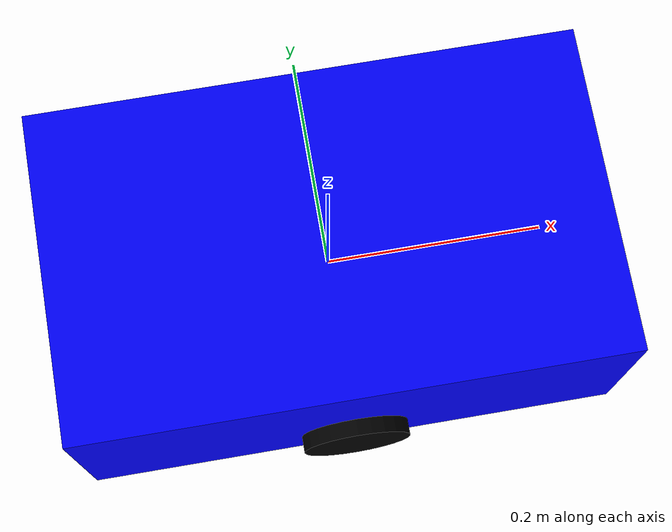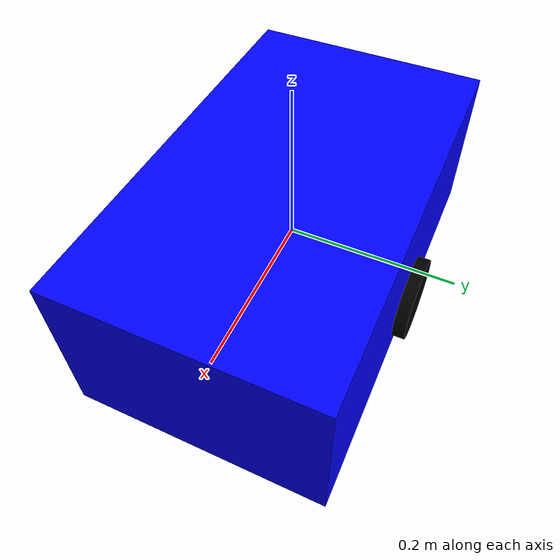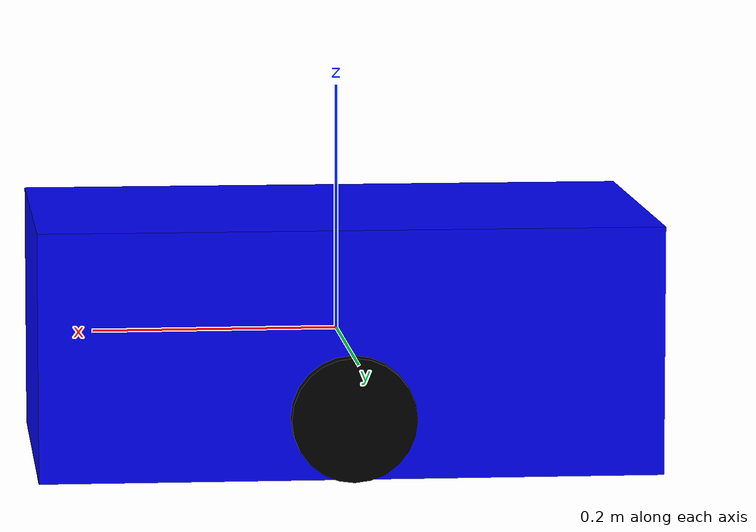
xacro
<?xml version="1.0"?>

<robot name="simple_robot">

  <!-- ================= BASE ================= -->

  <link name="base_link">

    <visual>
      <geometry>
        <box size="0.5 0.3 0.2"/>
      </geometry>

      <material name="blue">
        <color rgba="0 0 1 1"/>
      </material>
    </visual>

  </link>

  <!-- ================= LEFT WHEEL ================= -->

  <link name="left_wheel">

    <visual>
      <geometry>
        <cylinder radius="0.05" length="0.03"/>
      </geometry>

      <material name="black">
        <color rgba="0 0 0 1"/>
      </material>

      <!-- Поворачиваем колесо -->
      <origin rpy="1.5707 0 0"/>

    </visual>

  </link>

  <!-- ================= RIGHT WHEEL ================= -->

  <link name="right_wheel">

    <visual>
      <geometry>
        <cylinder radius="0.05" length="0.03"/>
      </geometry>

      <material name="black">
        <color rgba="0 0 0 1"/>
      </material>

      <origin rpy="1.5707 0 0"/>

    </visual>

  </link>

  <!-- ================= LEFT JOINT ================= -->

  <joint name="left_wheel_joint" type="continuous">

    <parent link="base_link"/>
    <child link="left_wheel"/>

    <origin xyz="0 0.15 -0.05"/>

    <axis xyz="0 1 0"/>

  </joint>

  <!-- ================= RIGHT JOINT ================= -->

  <joint name="right_wheel_joint" type="continuous">

    <parent link="base_link"/>
    <child link="right_wheel"/>

    <origin xyz="0 -0.15 -0.05"/>

    <axis xyz="0 1 0"/>

  </joint>

</robot>
